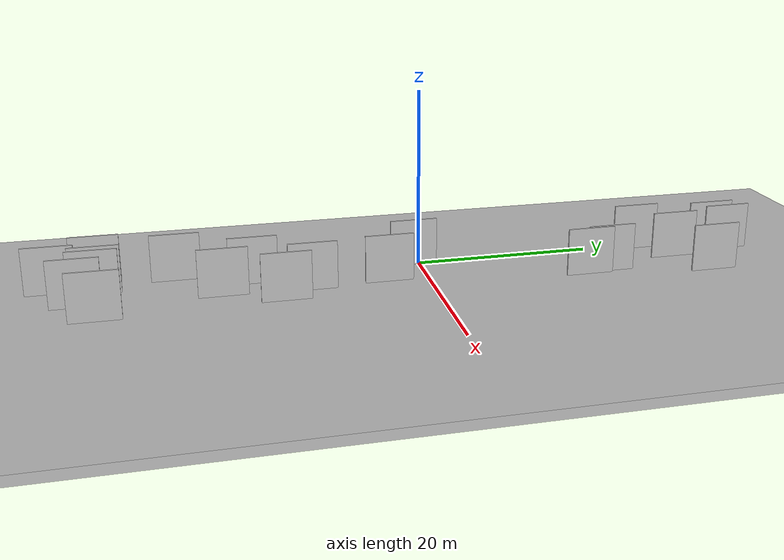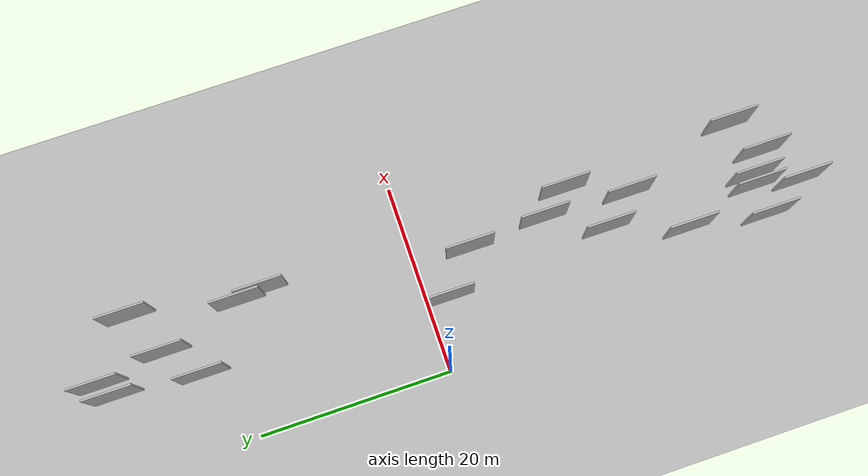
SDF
<?xml version="1.0" encoding="utf-8"?>

<sdf version="1.6">

   <world name="default">

      <gui fullscreen="0">

         <camera name="user_camera">

            <pose>-15 0 4.57585 0 0 0</pose>

            <view_controller>orbit</view_controller>

         </camera>

      </gui>

      <scene>

         <sky>

           <clouds>

             <speed>12</speed>

           </clouds>

         </sky>

         <ambient>0.4 0.4 0.4 1</ambient>

         <background>0.7 0.7 0.7 1</background>

         <shadows>1</shadows>

      </scene>

      <gravity>0 0 -9.8066</gravity>

      <magnetic_field>6e-06 2.3e-05 -4.2e-05</magnetic_field>

      <physics default="0" name="default_physics" type="ode">

         <ode>

            <solver>

               <type>quick</type>

               <iters>10</iters>

               <sor>1.0</sor>

               <use_dynamic_moi_rescaling>0</use_dynamic_moi_rescaling>

            </solver>

            <constraints>

               <cfm>0</cfm>

               <erp>0.2</erp>

               <contact_max_correcting_vel>100</contact_max_correcting_vel>

               <contact_surface_layer>0.001</contact_surface_layer>

            </constraints>

         </ode>

         <max_step_size>0.004</max_step_size>

         <real_time_factor>1</real_time_factor>

         <real_time_update_rate>250</real_time_update_rate>

      </physics>

      <light name="sun" type="directional">

         <cast_shadows>1</cast_shadows>

         <pose>0 0 10 0 0 0</pose>

         <diffuse>0.8 0.8 0.8 1</diffuse>

         <specular>0.2 0.2 0.2 1</specular>

         <attenuation>

            <range>1000</range>

            <constant>0.9</constant>

            <linear>0.01</linear>

            <quadratic>0.001</quadratic>

         </attenuation>

         <direction>-0.5 0.1 -0.9</direction>

      </light>

      <include>

         <name>ground_plane_1</name>

         <uri>model://HANNAS_ground_plane</uri>

         <pose>0 0 0  0 0 0</pose>

      </include>

      <include>

         <name>ground_plane_2</name>

         <uri>model://HANNAS_ground_plane</uri>

         <pose>100 0 0  0 0 0</pose>

      </include>

      <model name="HANNAS_wall_1">

         <static>1</static>

         <pose frame="">11.2324 -13.6043 2.5 0.000000 0.000000 1.570796</pose>

         <link name="link">

            <pose frame="">0 0 2.50 0 0 0</pose>

            <collision name="collision">

               <geometry>

                  <box>

                     <size>5.00 0.2 5.00</size>

                  </box>

               </geometry>

               <max_contacts>10</max_contacts>

               <surface>

                  <contact>

                     <ode/>

                  </contact>

                  <bounce/>

                  <friction>

                     <torsional>

                        <ode/>

                     </torsional>

                     <ode/>

                  </friction>

               </surface>

            </collision>

            <visual name="visual">

               <cast_shadows>0</cast_shadows>

               <geometry>

                  <box>

                     <size>5.00 0.2 5.00</size>

                  </box>

               </geometry>

               <material>

                  <script>

                     <uri>model://HANNAS_wall/materials/scripts</uri>

                     <uri>model://HANNAS_wall/materials/textures</uri>

                     <name>vrc/HANNAS_wall</name>

                  </script>

               </material>

            </visual>

            <self_collide>0</self_collide>

            <enable_wind>0</enable_wind>

            <kinematic>0</kinematic>

         </link>

      </model>

      <model name="HANNAS_wall_2">

         <static>1</static>

         <pose frame="">15.1090 28.3964 2.5 0.000000 0.000000 1.570796</pose>

         <link name="link">

            <pose frame="">0 0 2.50 0 0 0</pose>

            <collision name="collision">

               <geometry>

                  <box>

                     <size>5.00 0.2 5.00</size>

                  </box>

               </geometry>

               <max_contacts>10</max_contacts>

               <surface>

                  <contact>

                     <ode/>

                  </contact>

                  <bounce/>

                  <friction>

                     <torsional>

                        <ode/>

                     </torsional>

                     <ode/>

                  </friction>

               </surface>

            </collision>

            <visual name="visual">

               <cast_shadows>0</cast_shadows>

               <geometry>

                  <box>

                     <size>5.00 0.2 5.00</size>

                  </box>

               </geometry>

               <material>

                  <script>

                     <uri>model://HANNAS_wall/materials/scripts</uri>

                     <uri>model://HANNAS_wall/materials/textures</uri>

                     <name>vrc/HANNAS_wall</name>

                  </script>

               </material>

            </visual>

            <self_collide>0</self_collide>

            <enable_wind>0</enable_wind>

            <kinematic>0</kinematic>

         </link>

      </model>

      <model name="HANNAS_wall_3">

         <static>1</static>

         <pose frame="">10.6734 -36.5269 2.5 0.000000 0.000000 1.570796</pose>

         <link name="link">

            <pose frame="">0 0 2.50 0 0 0</pose>

            <collision name="collision">

               <geometry>

                  <box>

                     <size>5.00 0.2 5.00</size>

                  </box>

               </geometry>

               <max_contacts>10</max_contacts>

               <surface>

                  <contact>

                     <ode/>

                  </contact>

                  <bounce/>

                  <friction>

                     <torsional>

                        <ode/>

                     </torsional>

                     <ode/>

                  </friction>

               </surface>

            </collision>

            <visual name="visual">

               <cast_shadows>0</cast_shadows>

               <geometry>

                  <box>

                     <size>5.00 0.2 5.00</size>

                  </box>

               </geometry>

               <material>

                  <script>

                     <uri>model://HANNAS_wall/materials/scripts</uri>

                     <uri>model://HANNAS_wall/materials/textures</uri>

                     <name>vrc/HANNAS_wall</name>

                  </script>

               </material>

            </visual>

            <self_collide>0</self_collide>

            <enable_wind>0</enable_wind>

            <kinematic>0</kinematic>

         </link>

      </model>

      <model name="HANNAS_wall_4">

         <static>1</static>

         <pose frame="">10.4701 26.0214 2.5 0.000000 0.000000 1.570796</pose>

         <link name="link">

            <pose frame="">0 0 2.50 0 0 0</pose>

            <collision name="collision">

               <geometry>

                  <box>

                     <size>5.00 0.2 5.00</size>

                  </box>

               </geometry>

               <max_contacts>10</max_contacts>

               <surface>

                  <contact>

                     <ode/>

                  </contact>

                  <bounce/>

                  <friction>

                     <torsional>

                        <ode/>

                     </torsional>

                     <ode/>

                  </friction>

               </surface>

            </collision>

            <visual name="visual">

               <cast_shadows>0</cast_shadows>

               <geometry>

                  <box>

                     <size>5.00 0.2 5.00</size>

                  </box>

               </geometry>

               <material>

                  <script>

                     <uri>model://HANNAS_wall/materials/scripts</uri>

                     <uri>model://HANNAS_wall/materials/textures</uri>

                     <name>vrc/HANNAS_wall</name>

                  </script>

               </material>

            </visual>

            <self_collide>0</self_collide>

            <enable_wind>0</enable_wind>

            <kinematic>0</kinematic>

         </link>

      </model>

      <model name="HANNAS_wall_5">

         <static>1</static>

         <pose frame="">10.9278 -22.4610 2.5 0.000000 0.000000 1.570796</pose>

         <link name="link">

            <pose frame="">0 0 2.50 0 0 0</pose>

            <collision name="collision">

               <geometry>

                  <box>

                     <size>5.00 0.2 5.00</size>

                  </box>

               </geometry>

               <max_contacts>10</max_contacts>

               <surface>

                  <contact>

                     <ode/>

                  </contact>

                  <bounce/>

                  <friction>

                     <torsional>

                        <ode/>

                     </torsional>

                     <ode/>

                  </friction>

               </surface>

            </collision>

            <visual name="visual">

               <cast_shadows>0</cast_shadows>

               <geometry>

                  <box>

                     <size>5.00 0.2 5.00</size>

                  </box>

               </geometry>

               <material>

                  <script>

                     <uri>model://HANNAS_wall/materials/scripts</uri>

                     <uri>model://HANNAS_wall/materials/textures</uri>

                     <name>vrc/HANNAS_wall</name>

                  </script>

               </material>

            </visual>

            <self_collide>0</self_collide>

            <enable_wind>0</enable_wind>

            <kinematic>0</kinematic>

         </link>

      </model>

      <model name="HANNAS_wall_6">

         <static>1</static>

         <pose frame="">7.5267 -34.7965 2.5 0.000000 0.000000 1.570796</pose>

         <link name="link">

            <pose frame="">0 0 2.50 0 0 0</pose>

            <collision name="collision">

               <geometry>

                  <box>

                     <size>5.00 0.2 5.00</size>

                  </box>

               </geometry>

               <max_contacts>10</max_contacts>

               <surface>

                  <contact>

                     <ode/>

                  </contact>

                  <bounce/>

                  <friction>

                     <torsional>

                        <ode/>

                     </torsional>

                     <ode/>

                  </friction>

               </surface>

            </collision>

            <visual name="visual">

               <cast_shadows>0</cast_shadows>

               <geometry>

                  <box>

                     <size>5.00 0.2 5.00</size>

                  </box>

               </geometry>

               <material>

                  <script>

                     <uri>model://HANNAS_wall/materials/scripts</uri>

                     <uri>model://HANNAS_wall/materials/textures</uri>

                     <name>vrc/HANNAS_wall</name>

                  </script>

               </material>

            </visual>

            <self_collide>0</self_collide>

            <enable_wind>0</enable_wind>

            <kinematic>0</kinematic>

         </link>

      </model>

      <model name="HANNAS_wall_7">

         <static>1</static>

         <pose frame="">8.2335 -19.3178 2.5 0.000000 0.000000 1.570796</pose>

         <link name="link">

            <pose frame="">0 0 2.50 0 0 0</pose>

            <collision name="collision">

               <geometry>

                  <box>

                     <size>5.00 0.2 5.00</size>

                  </box>

               </geometry>

               <max_contacts>10</max_contacts>

               <surface>

                  <contact>

                     <ode/>

                  </contact>

                  <bounce/>

                  <friction>

                     <torsional>

                        <ode/>

                     </torsional>

                     <ode/>

                  </friction>

               </surface>

            </collision>

            <visual name="visual">

               <cast_shadows>0</cast_shadows>

               <geometry>

                  <box>

                     <size>5.00 0.2 5.00</size>

                  </box>

               </geometry>

               <material>

                  <script>

                     <uri>model://HANNAS_wall/materials/scripts</uri>

                     <uri>model://HANNAS_wall/materials/textures</uri>

                     <name>vrc/HANNAS_wall</name>

                  </script>

               </material>

            </visual>

            <self_collide>0</self_collide>

            <enable_wind>0</enable_wind>

            <kinematic>0</kinematic>

         </link>

      </model>

      <model name="HANNAS_wall_8">

         <static>1</static>

         <pose frame="">6.6484 -2.2012 2.5 0.000000 0.000000 1.570796</pose>

         <link name="link">

            <pose frame="">0 0 2.50 0 0 0</pose>

            <collision name="collision">

               <geometry>

                  <box>

                     <size>5.00 0.2 5.00</size>

                  </box>

               </geometry>

               <max_contacts>10</max_contacts>

               <surface>

                  <contact>

                     <ode/>

                  </contact>

                  <bounce/>

                  <friction>

                     <torsional>

                        <ode/>

                     </torsional>

                     <ode/>

                  </friction>

               </surface>

            </collision>

            <visual name="visual">

               <cast_shadows>0</cast_shadows>

               <geometry>

                  <box>

                     <size>5.00 0.2 5.00</size>

                  </box>

               </geometry>

               <material>

                  <script>

                     <uri>model://HANNAS_wall/materials/scripts</uri>

                     <uri>model://HANNAS_wall/materials/textures</uri>

                     <name>vrc/HANNAS_wall</name>

                  </script>

               </material>

            </visual>

            <self_collide>0</self_collide>

            <enable_wind>0</enable_wind>

            <kinematic>0</kinematic>

         </link>

      </model>

      <model name="HANNAS_wall_9">

         <static>1</static>

         <pose frame="">4.3277 -34.9484 2.5 0.000000 0.000000 1.570796</pose>

         <link name="link">

            <pose frame="">0 0 2.50 0 0 0</pose>

            <collision name="collision">

               <geometry>

                  <box>

                     <size>5.00 0.2 5.00</size>

                  </box>

               </geometry>

               <max_contacts>10</max_contacts>

               <surface>

                  <contact>

                     <ode/>

                  </contact>

                  <bounce/>

                  <friction>

                     <torsional>

                        <ode/>

                     </torsional>

                     <ode/>

                  </friction>

               </surface>

            </collision>

            <visual name="visual">

               <cast_shadows>0</cast_shadows>

               <geometry>

                  <box>

                     <size>5.00 0.2 5.00</size>

                  </box>

               </geometry>

               <material>

                  <script>

                     <uri>model://HANNAS_wall/materials/scripts</uri>

                     <uri>model://HANNAS_wall/materials/textures</uri>

                     <name>vrc/HANNAS_wall</name>

                  </script>

               </material>

            </visual>

            <self_collide>0</self_collide>

            <enable_wind>0</enable_wind>

            <kinematic>0</kinematic>

         </link>

      </model>

      <model name="HANNAS_wall_10">

         <static>1</static>

         <pose frame="">14.4307 -34.5241 2.5 0.000000 0.000000 1.570796</pose>

         <link name="link">

            <pose frame="">0 0 2.50 0 0 0</pose>

            <collision name="collision">

               <geometry>

                  <box>

                     <size>5.00 0.2 5.00</size>

                  </box>

               </geometry>

               <max_contacts>10</max_contacts>

               <surface>

                  <contact>

                     <ode/>

                  </contact>

                  <bounce/>

                  <friction>

                     <torsional>

                        <ode/>

                     </torsional>

                     <ode/>

                  </friction>

               </surface>

            </collision>

            <visual name="visual">

               <cast_shadows>0</cast_shadows>

               <geometry>

                  <box>

                     <size>5.00 0.2 5.00</size>

                  </box>

               </geometry>

               <material>

                  <script>

                     <uri>model://HANNAS_wall/materials/scripts</uri>

                     <uri>model://HANNAS_wall/materials/textures</uri>

                     <name>vrc/HANNAS_wall</name>

                  </script>

               </material>

            </visual>

            <self_collide>0</self_collide>

            <enable_wind>0</enable_wind>

            <kinematic>0</kinematic>

         </link>

      </model>

      <model name="HANNAS_wall_11">

         <static>1</static>

         <pose frame="">7.1669 23.0057 2.5 0.000000 0.000000 1.570796</pose>

         <link name="link">

            <pose frame="">0 0 2.50 0 0 0</pose>

            <collision name="collision">

               <geometry>

                  <box>

                     <size>5.00 0.2 5.00</size>

                  </box>

               </geometry>

               <max_contacts>10</max_contacts>

               <surface>

                  <contact>

                     <ode/>

                  </contact>

                  <bounce/>

                  <friction>

                     <torsional>

                        <ode/>

                     </torsional>

                     <ode/>

                  </friction>

               </surface>

            </collision>

            <visual name="visual">

               <cast_shadows>0</cast_shadows>

               <geometry>

                  <box>

                     <size>5.00 0.2 5.00</size>

                  </box>

               </geometry>

               <material>

                  <script>

                     <uri>model://HANNAS_wall/materials/scripts</uri>

                     <uri>model://HANNAS_wall/materials/textures</uri>

                     <name>vrc/HANNAS_wall</name>

                  </script>

               </material>

            </visual>

            <self_collide>0</self_collide>

            <enable_wind>0</enable_wind>

            <kinematic>0</kinematic>

         </link>

      </model>

      <model name="HANNAS_wall_12">

         <static>1</static>

         <pose frame="">9.3892 32.8142 2.5 0.000000 0.000000 1.570796</pose>

         <link name="link">

            <pose frame="">0 0 2.50 0 0 0</pose>

            <collision name="collision">

               <geometry>

                  <box>

                     <size>5.00 0.2 5.00</size>

                  </box>

               </geometry>

               <max_contacts>10</max_contacts>

               <surface>

                  <contact>

                     <ode/>

                  </contact>

                  <bounce/>

                  <friction>

                     <torsional>

                        <ode/>

                     </torsional>

                     <ode/>

                  </friction>

               </surface>

            </collision>

            <visual name="visual">

               <cast_shadows>0</cast_shadows>

               <geometry>

                  <box>

                     <size>5.00 0.2 5.00</size>

                  </box>

               </geometry>

               <material>

                  <script>

                     <uri>model://HANNAS_wall/materials/scripts</uri>

                     <uri>model://HANNAS_wall/materials/textures</uri>

                     <name>vrc/HANNAS_wall</name>

                  </script>

               </material>

            </visual>

            <self_collide>0</self_collide>

            <enable_wind>0</enable_wind>

            <kinematic>0</kinematic>

         </link>

      </model>

      <model name="HANNAS_wall_13">

         <static>1</static>

         <pose frame="">10.7094 -5.6626 2.5 0.000000 0.000000 1.570796</pose>

         <link name="link">

            <pose frame="">0 0 2.50 0 0 0</pose>

            <collision name="collision">

               <geometry>

                  <box>

                     <size>5.00 0.2 5.00</size>

                  </box>

               </geometry>

               <max_contacts>10</max_contacts>

               <surface>

                  <contact>

                     <ode/>

                  </contact>

                  <bounce/>

                  <friction>

                     <torsional>

                        <ode/>

                     </torsional>

                     <ode/>

                  </friction>

               </surface>

            </collision>

            <visual name="visual">

               <cast_shadows>0</cast_shadows>

               <geometry>

                  <box>

                     <size>5.00 0.2 5.00</size>

                  </box>

               </geometry>

               <material>

                  <script>

                     <uri>model://HANNAS_wall/materials/scripts</uri>

                     <uri>model://HANNAS_wall/materials/textures</uri>

                     <name>vrc/HANNAS_wall</name>

                  </script>

               </material>

            </visual>

            <self_collide>0</self_collide>

            <enable_wind>0</enable_wind>

            <kinematic>0</kinematic>

         </link>

      </model>

      <model name="HANNAS_wall_14">

         <static>1</static>

         <pose frame="">8.5868 -34.9363 2.5 0.000000 0.000000 1.570796</pose>

         <link name="link">

            <pose frame="">0 0 2.50 0 0 0</pose>

            <collision name="collision">

               <geometry>

                  <box>

                     <size>5.00 0.2 5.00</size>

                  </box>

               </geometry>

               <max_contacts>10</max_contacts>

               <surface>

                  <contact>

                     <ode/>

                  </contact>

                  <bounce/>

                  <friction>

                     <torsional>

                        <ode/>

                     </torsional>

                     <ode/>

                  </friction>

               </surface>

            </collision>

            <visual name="visual">

               <cast_shadows>0</cast_shadows>

               <geometry>

                  <box>

                     <size>5.00 0.2 5.00</size>

                  </box>

               </geometry>

               <material>

                  <script>

                     <uri>model://HANNAS_wall/materials/scripts</uri>

                     <uri>model://HANNAS_wall/materials/textures</uri>

                     <name>vrc/HANNAS_wall</name>

                  </script>

               </material>

            </visual>

            <self_collide>0</self_collide>

            <enable_wind>0</enable_wind>

            <kinematic>0</kinematic>

         </link>

      </model>

      <model name="HANNAS_wall_15">

         <static>1</static>

         <pose frame="">13.0267 17.5939 2.5 0.000000 0.000000 1.570796</pose>

         <link name="link">

            <pose frame="">0 0 2.50 0 0 0</pose>

            <collision name="collision">

               <geometry>

                  <box>

                     <size>5.00 0.2 5.00</size>

                  </box>

               </geometry>

               <max_contacts>10</max_contacts>

               <surface>

                  <contact>

                     <ode/>

                  </contact>

                  <bounce/>

                  <friction>

                     <torsional>

                        <ode/>

                     </torsional>

                     <ode/>

                  </friction>

               </surface>

            </collision>

            <visual name="visual">

               <cast_shadows>0</cast_shadows>

               <geometry>

                  <box>

                     <size>5.00 0.2 5.00</size>

                  </box>

               </geometry>

               <material>

                  <script>

                     <uri>model://HANNAS_wall/materials/scripts</uri>

                     <uri>model://HANNAS_wall/materials/textures</uri>

                     <name>vrc/HANNAS_wall</name>

                  </script>

               </material>

            </visual>

            <self_collide>0</self_collide>

            <enable_wind>0</enable_wind>

            <kinematic>0</kinematic>

         </link>

      </model>

      <model name="HANNAS_wall_16">

         <static>1</static>

         <pose frame="">13.3764 15.1499 2.5 0.000000 0.000000 1.570796</pose>

         <link name="link">

            <pose frame="">0 0 2.50 0 0 0</pose>

            <collision name="collision">

               <geometry>

                  <box>

                     <size>5.00 0.2 5.00</size>

                  </box>

               </geometry>

               <max_contacts>10</max_contacts>

               <surface>

                  <contact>

                     <ode/>

                  </contact>

                  <bounce/>

                  <friction>

                     <torsional>

                        <ode/>

                     </torsional>

                     <ode/>

                  </friction>

               </surface>

            </collision>

            <visual name="visual">

               <cast_shadows>0</cast_shadows>

               <geometry>

                  <box>

                     <size>5.00 0.2 5.00</size>

                  </box>

               </geometry>

               <material>

                  <script>

                     <uri>model://HANNAS_wall/materials/scripts</uri>

                     <uri>model://HANNAS_wall/materials/textures</uri>

                     <name>vrc/HANNAS_wall</name>

                  </script>

               </material>

            </visual>

            <self_collide>0</self_collide>

            <enable_wind>0</enable_wind>

            <kinematic>0</kinematic>

         </link>

      </model>

      <model name="HANNAS_wall_17">

         <static>1</static>

         <pose frame="">6.6458 -39.2104 2.5 0.000000 0.000000 1.570796</pose>

         <link name="link">

            <pose frame="">0 0 2.50 0 0 0</pose>

            <collision name="collision">

               <geometry>

                  <box>

                     <size>5.00 0.2 5.00</size>

                  </box>

               </geometry>

               <max_contacts>10</max_contacts>

               <surface>

                  <contact>

                     <ode/>

                  </contact>

                  <bounce/>

                  <friction>

                     <torsional>

                        <ode/>

                     </torsional>

                     <ode/>

                  </friction>

               </surface>

            </collision>

            <visual name="visual">

               <cast_shadows>0</cast_shadows>

               <geometry>

                  <box>

                     <size>5.00 0.2 5.00</size>

                  </box>

               </geometry>

               <material>

                  <script>

                     <uri>model://HANNAS_wall/materials/scripts</uri>

                     <uri>model://HANNAS_wall/materials/textures</uri>

                     <name>vrc/HANNAS_wall</name>

                  </script>

               </material>

            </visual>

            <self_collide>0</self_collide>

            <enable_wind>0</enable_wind>

            <kinematic>0</kinematic>

         </link>

      </model>

      <model name="HANNAS_wall_18">

         <static>1</static>

         <pose frame="">7.9014 31.6929 2.5 0.000000 0.000000 1.570796</pose>

         <link name="link">

            <pose frame="">0 0 2.50 0 0 0</pose>

            <collision name="collision">

               <geometry>

                  <box>

                     <size>5.00 0.2 5.00</size>

                  </box>

               </geometry>

               <max_contacts>10</max_contacts>

               <surface>

                  <contact>

                     <ode/>

                  </contact>

                  <bounce/>

                  <friction>

                     <torsional>

                        <ode/>

                     </torsional>

                     <ode/>

                  </friction>

               </surface>

            </collision>

            <visual name="visual">

               <cast_shadows>0</cast_shadows>

               <geometry>

                  <box>

                     <size>5.00 0.2 5.00</size>

                  </box>

               </geometry>

               <material>

                  <script>

                     <uri>model://HANNAS_wall/materials/scripts</uri>

                     <uri>model://HANNAS_wall/materials/textures</uri>

                     <name>vrc/HANNAS_wall</name>

                  </script>

               </material>

            </visual>

            <self_collide>0</self_collide>

            <enable_wind>0</enable_wind>

            <kinematic>0</kinematic>

         </link>

      </model>

      <model name="HANNAS_wall_19">

         <static>1</static>

         <pose frame="">13.4053 -16.4811 2.5 0.000000 0.000000 1.570796</pose>

         <link name="link">

            <pose frame="">0 0 2.50 0 0 0</pose>

            <collision name="collision">

               <geometry>

                  <box>

                     <size>5.00 0.2 5.00</size>

                  </box>

               </geometry>

               <max_contacts>10</max_contacts>

               <surface>

                  <contact>

                     <ode/>

                  </contact>

                  <bounce/>

                  <friction>

                     <torsional>

                        <ode/>

                     </torsional>

                     <ode/>

                  </friction>

               </surface>

            </collision>

            <visual name="visual">

               <cast_shadows>0</cast_shadows>

               <geometry>

                  <box>

                     <size>5.00 0.2 5.00</size>

                  </box>

               </geometry>

               <material>

                  <script>

                     <uri>model://HANNAS_wall/materials/scripts</uri>

                     <uri>model://HANNAS_wall/materials/textures</uri>

                     <name>vrc/HANNAS_wall</name>

                  </script>

               </material>

            </visual>

            <self_collide>0</self_collide>

            <enable_wind>0</enable_wind>

            <kinematic>0</kinematic>

         </link>

      </model>

      <model name="HANNAS_wall_20">

         <static>1</static>

         <pose frame="">5.5808 -26.9635 2.5 0.000000 0.000000 1.570796</pose>

         <link name="link">

            <pose frame="">0 0 2.50 0 0 0</pose>

            <collision name="collision">

               <geometry>

                  <box>

                     <size>5.00 0.2 5.00</size>

                  </box>

               </geometry>

               <max_contacts>10</max_contacts>

               <surface>

                  <contact>

                     <ode/>

                  </contact>

                  <bounce/>

                  <friction>

                     <torsional>

                        <ode/>

                     </torsional>

                     <ode/>

                  </friction>

               </surface>

            </collision>

            <visual name="visual">

               <cast_shadows>0</cast_shadows>

               <geometry>

                  <box>

                     <size>5.00 0.2 5.00</size>

                  </box>

               </geometry>

               <material>

                  <script>

                     <uri>model://HANNAS_wall/materials/scripts</uri>

                     <uri>model://HANNAS_wall/materials/textures</uri>

                     <name>vrc/HANNAS_wall</name>

                  </script>

               </material>

            </visual>

            <self_collide>0</self_collide>

            <enable_wind>0</enable_wind>

            <kinematic>0</kinematic>

         </link>

      </model>

   </world>

</sdf>

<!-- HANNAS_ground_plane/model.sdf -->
<sdf version="1.4">
<model name="HANNAS_ground_plane">
  <static>true</static>
    <link name="link">
      <collision name="collision">
        <geometry>
          <plane>
            <normal>0 0 1</normal>
            <size>1000 1000</size>
          </plane>
        </geometry>
        <surface>
          <friction>
            <ode>
              <mu>100</mu>
              <mu2>50</mu2>
            </ode>
          </friction>
        </surface>
      </collision>
      <visual name="visual">
        <cast_shadows>false</cast_shadows>
        <geometry>
          <plane>
            <normal>0 0 1</normal>
            <size>1000 1000</size>
          </plane>
        </geometry>
        <material>
          <script>
            <uri>model://HANNAS_ground_plane/materials/scripts/HANNAS_ground_plane.material</uri>
	    <uri>model://HANNAS_ground_plane/materials/textures</uri>
            <name>HANNASGroundPlane/Image</name>
          </script>
        </material>
      </visual>
    </link>
  </model>
</sdf>
